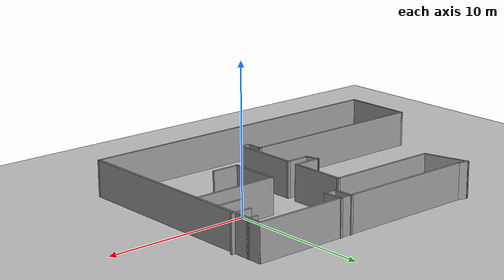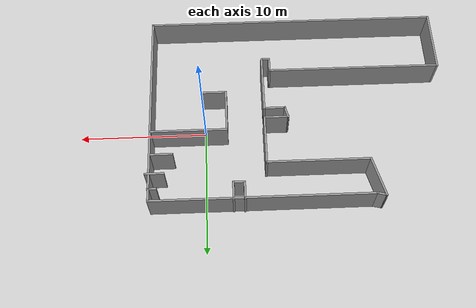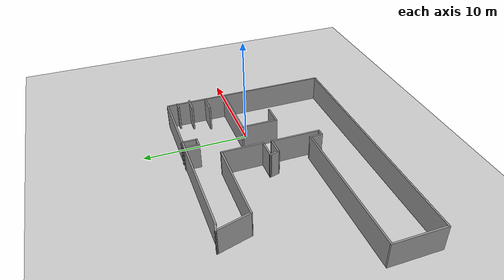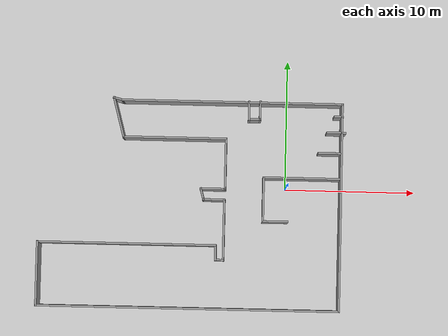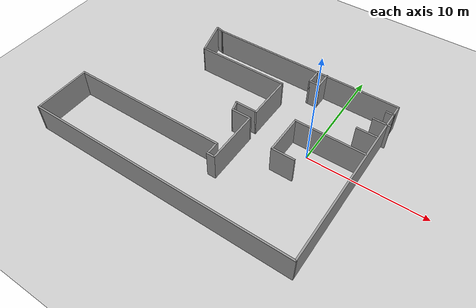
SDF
<sdf version="1.6">
 <world name="default">
  <light name="sun" type="directional">
   <pose>0 0 10 0 -0 0</pose>
   <diffuse>0.8 0.8 0.8 1</diffuse>
   <specular>0.2 0.2 0.2 1</specular>
   <attenuation>
    <range>1000</range>
    <constant>0.9</constant>
    <linear>0.01</linear>
    <quadratic>0.001</quadratic>
   </attenuation>
   <direction>-0.5 0.1 -0.9</direction>
  </light>
  <model name="ground_plane">
   <static>1</static>
   <link name="link">
    <collision name="collision">
     <geometry><plane><normal>0 0 1</normal><size>100 100</size></plane></geometry>
     <surface>
      <contact><collide_bitmask>65535</collide_bitmask></contact>
      <friction><ode><mu>100</mu><mu2>50</mu2></ode></friction>
     </surface>
    </collision>
    <visual name="visual">
     <cast_shadows>0</cast_shadows>
     <geometry><plane><normal>0 0 1</normal><size>100 100</size></plane></geometry>
     <material>
      <script><uri>file://media/materials/scripts/gazebo.material</uri><name>Gazebo/Grey</name></script>
     </material>
    </visual>
   </link>
  </model>
  <gravity>0 0 -9.8</gravity>
  <magnetic_field>6e-06 2.3e-05 -4.2e-05</magnetic_field>
  <atmosphere type="adiabatic"/>
  <physics name="default_physics" default="0" type="ode">
   <max_step_size>0.001</max_step_size>
   <real_time_factor>1</real_time_factor>
   <real_time_update_rate>1000</real_time_update_rate>
  </physics>
  <scene><ambient>0.4 0.4 0.4 1</ambient><background>0.7 0.7 0.7 1</background><shadows>1</shadows></scene>
  <spherical_coordinates>
   <surface_model>EARTH_WGS84</surface_model>
   <latitude_deg>0</latitude_deg>
   <longitude_deg>0</longitude_deg>
   <elevation>0</elevation>
   <heading_deg>0</heading_deg>
  </spherical_coordinates>
  <model name="pf_13">
   <pose>-7.20667 -1.27419 0 0 -0 0</pose>
   <link name="Wall_12">
    <collision name="Wall_12_Collision">
     <geometry><box><size>17 0.15 2.5</size></box></geometry>
     <pose>0 0 1.25 0 -0 0</pose>
    </collision>
    <visual name="Wall_12_Visual">
     <pose>0 0 1.25 0 -0 0</pose>
     <geometry><box><size>17 0.15 2.5</size></box></geometry>
     <material>
      <script><uri>file://media/materials/scripts/gazebo.material</uri><name>Gazebo/Grey</name></script>
      <ambient>1 1 1 1</ambient>
     </material>
     <meta><layer>0</layer></meta>
    </visual>
    <pose>2.99692 7.83387 0 0 -0 0</pose>
   </link>
   <link name="Wall_13">
    <collision name="Wall_13_Collision">
     <geometry><box><size>16 0.15 2.5</size></box></geometry>
     <pose>0 0 1.25 0 -0 0</pose>
    </collision>
    <visual name="Wall_13_Visual">
     <pose>0 0 1.25 0 -0 0</pose>
     <geometry><box><size>16 0.15 2.5</size></box></geometry>
     <material>
      <script><uri>file://media/materials/scripts/gazebo.material</uri><name>Gazebo/Grey</name></script>
      <ambient>1 1 1 1</ambient>
     </material>
     <meta><layer>0</layer></meta>
    </visual>
    <pose>11.4219 -0.091131 0 0 -0 -1.5708</pose>
   </link>
   <link name="Wall_15">
    <collision name="Wall_15_Collision">
     <geometry><box><size>23.25 0.15 2.5</size></box></geometry>
     <pose>0 0 1.25 0 -0 0</pose>
    </collision>
    <visual name="Wall_15_Visual">
     <pose>0 0 1.25 0 -0 0</pose>
     <geometry><box><size>23.25 0.15 2.5</size></box></geometry>
     <material>
      <script><uri>file://media/materials/scripts/gazebo.material</uri><name>Gazebo/Grey</name></script>
      <ambient>1 1 1 1</ambient>
     </material>
     <meta><layer>0</layer></meta>
    </visual>
    <pose>-0.12808 -8.01613 0 0 -0 3.14159</pose>
   </link>
   <link name="Wall_16">
    <collision name="Wall_16_Collision">
     <geometry><box><size>5 0.15 2.5</size></box></geometry>
     <pose>0 0 1.25 0 -0 0</pose>
    </collision>
    <visual name="Wall_16_Visual">
     <pose>0 0 1.25 0 -0 0</pose>
     <geometry><box><size>5 0.15 2.5</size></box></geometry>
     <material>
      <script><uri>file://media/materials/scripts/gazebo.material</uri><name>Gazebo/Grey</name></script>
      <ambient>1 1 1 1</ambient>
     </material>
     <meta><layer>0</layer></meta>
    </visual>
    <pose>-11.6781 -5.59113 0 0 -0 1.5708</pose>
   </link>
   <link name="Wall_17">
    <collision name="Wall_17_Collision">
     <geometry><box><size>13.75 0.15 2.5</size></box></geometry>
     <pose>0 0 1.25 0 -0 0</pose>
    </collision>
    <visual name="Wall_17_Visual">
     <pose>0 0 1.25 0 -0 0</pose>
     <geometry><box><size>13.75 0.15 2.5</size></box></geometry>
     <material>
      <script><uri>file://media/materials/scripts/gazebo.material</uri><name>Gazebo/Grey</name></script>
      <ambient>1 1 1 1</ambient>
     </material>
     <meta><layer>0</layer></meta>
    </visual>
    <pose>-4.87808 -3.16613 0 0 -0 0</pose>
   </link>
   <link name="Wall_18">
    <collision name="Wall_18_Collision">
     <geometry><box><size>1.25 0.15 2.5</size></box></geometry>
     <pose>0 0 1.25 0 -0 0</pose>
    </collision>
    <visual name="Wall_18_Visual">
     <pose>0 0 1.25 0 -0 0</pose>
     <geometry><box><size>1.25 0.15 2.5</size></box></geometry>
     <material>
      <script><uri>file://media/materials/scripts/gazebo.material</uri><name>Gazebo/Grey</name></script>
      <ambient>1 1 1 1</ambient>
     </material>
     <meta><layer>0</layer></meta>
    </visual>
    <pose>1.92192 -3.71613 0 0 -0 -1.5708</pose>
   </link>
   <link name="Wall_19">
    <collision name="Wall_19_Collision">
     <geometry><box><size>0.75 0.15 2.5</size></box></geometry>
     <pose>0 0 1.25 0 -0 0</pose>
    </collision>
    <visual name="Wall_19_Visual">
     <pose>0 0 1.25 0 -0 0</pose>
     <geometry><box><size>0.75 0.15 2.5</size></box></geometry>
     <material>
      <script><uri>file://media/materials/scripts/gazebo.material</uri><name>Gazebo/Grey</name></script>
      <ambient>1 1 1 1</ambient>
     </material>
     <meta><layer>0</layer></meta>
    </visual>
    <pose>2.22192 -4.26613 0 0 -0 0</pose>
   </link>
   <link name="Wall_20">
    <collision name="Wall_20_Collision">
     <geometry><box><size>4.75 0.15 2.5</size></box></geometry>
     <pose>0 0 1.25 0 -0 0</pose>
    </collision>
    <visual name="Wall_20_Visual">
     <pose>0 0 1.25 0 -0 0</pose>
     <geometry><box><size>4.75 0.15 2.5</size></box></geometry>
     <material>
      <script><uri>file://media/materials/scripts/gazebo.material</uri><name>Gazebo/Grey</name></script>
      <ambient>1 1 1 1</ambient>
     </material>
     <meta><layer>0</layer></meta>
    </visual>
    <pose>2.52192 -1.96613 0 0 -0 1.5708</pose>
   </link>
   <link name="Wall_21">
    <collision name="Wall_21_Collision">
     <geometry><box><size>1.75 0.15 2.5</size></box></geometry>
     <pose>0 0 1.25 0 -0 0</pose>
    </collision>
    <visual name="Wall_21_Visual">
     <pose>0 0 1.25 0 -0 0</pose>
     <geometry><box><size>1.75 0.15 2.5</size></box></geometry>
     <material>
      <script><uri>file://media/materials/scripts/gazebo.material</uri><name>Gazebo/Grey</name></script>
      <ambient>1 1 1 1</ambient>
     </material>
     <meta><layer>0</layer></meta>
    </visual>
    <pose>1.72192 0.333869 0 0 -0 3.14159</pose>
   </link>
   <link name="Wall_22">
    <collision name="Wall_22_Collision">
     <geometry><box><size>1 0.15 2.5</size></box></geometry>
     <pose>0 0 1.25 0 -0 0</pose>
    </collision>
    <visual name="Wall_22_Visual">
     <pose>0 0 1.25 0 -0 0</pose>
     <geometry><box><size>1 0.15 2.5</size></box></geometry>
     <material>
      <script><uri>file://media/materials/scripts/gazebo.material</uri><name>Gazebo/Grey</name></script>
      <ambient>1 1 1 1</ambient>
     </material>
     <meta><layer>0</layer></meta>
    </visual>
    <pose>0.811922 0.744387 0 0 -0 1.8326</pose>
   </link>
   <link name="Wall_23">
    <collision name="Wall_23_Collision">
     <geometry><box><size>2 0.15 2.5</size></box></geometry>
     <pose>0 0 1.25 0 -0 0</pose>
    </collision>
    <visual name="Wall_23_Visual">
     <pose>0 0 1.25 0 -0 0</pose>
     <geometry><box><size>2 0.15 2.5</size></box></geometry>
     <material>
      <script><uri>file://media/materials/scripts/gazebo.material</uri><name>Gazebo/Grey</name></script>
      <ambient>1 1 1 1</ambient>
     </material>
     <meta><layer>0</layer></meta>
    </visual>
    <pose>1.62692 1.15491 0 0 -0 0</pose>
   </link>
   <link name="Wall_24">
    <collision name="Wall_24_Collision">
     <geometry><box><size>4 0.15 2.5</size></box></geometry>
     <pose>0 0 1.25 0 -0 0</pose>
    </collision>
    <visual name="Wall_24_Visual">
     <pose>0 0 1.25 0 -0 0</pose>
     <geometry><box><size>4 0.15 2.5</size></box></geometry>
     <material>
      <script><uri>file://media/materials/scripts/gazebo.material</uri><name>Gazebo/Grey</name></script>
      <ambient>1 1 1 1</ambient>
     </material>
     <meta><layer>0</layer></meta>
    </visual>
    <pose>2.55192 3.07991 0 0 -0 1.5708</pose>
   </link>
   <link name="Wall_25">
    <collision name="Wall_25_Collision">
     <geometry><box><size>8 0.15 2.5</size></box></geometry>
     <pose>0 0 1.25 0 -0 0</pose>
    </collision>
    <visual name="Wall_25_Visual">
     <pose>0 0 1.25 0 -0 0</pose>
     <geometry><box><size>8 0.15 2.5</size></box></geometry>
     <material>
      <script><uri>file://media/materials/scripts/gazebo.material</uri><name>Gazebo/Grey</name></script>
      <ambient>1 1 1 1</ambient>
     </material>
     <meta><layer>0</layer></meta>
    </visual>
    <pose>-1.37308 5.00491 0 0 -0 3.14159</pose>
   </link>
   <link name="Wall_26">
    <collision name="Wall_26_Collision">
     <geometry><box><size>3.25 0.15 2.5</size></box></geometry>
     <pose>0 0 1.25 0 -0 0</pose>
    </collision>
    <visual name="Wall_26_Visual">
     <pose>0 0 1.25 0 -0 0</pose>
     <geometry><box><size>3.25 0.15 2.5</size></box></geometry>
     <material>
      <script><uri>file://media/materials/scripts/gazebo.material</uri><name>Gazebo/Grey</name></script>
      <ambient>1 1 1 1</ambient>
     </material>
     <meta><layer>0</layer></meta>
    </visual>
    <pose>-5.69925 6.50209 0 0 -0 1.8326</pose>
   </link>
   <link name="Wall_27">
    <collision name="Wall_27_Collision">
     <geometry><box><size>0.842383 0.15 2.5</size></box></geometry>
     <pose>0 0 1.25 0 -0 0</pose>
    </collision>
    <visual name="Wall_27_Visual">
     <pose>0 0 1.25 0 -0 0</pose>
     <geometry><box><size>0.842383 0.15 2.5</size></box></geometry>
     <material>
      <script><uri>file://media/materials/scripts/gazebo.material</uri><name>Gazebo/Grey</name></script>
      <ambient>1 1 1 1</ambient>
     </material>
     <meta><layer>0</layer></meta>
    </visual>
    <pose>-5.76425 7.91657 0 0 -0 -0.241228</pose>
   </link>
   <link name="Wall_29">
    <collision name="Wall_29_Collision">
     <geometry><box><size>6 0.15 2.5</size></box></geometry>
     <pose>0 0 1.25 0 -0 0</pose>
    </collision>
    <visual name="Wall_29_Visual">
     <pose>0 0 1.25 0 -0 0</pose>
     <geometry><box><size>6 0.15 2.5</size></box></geometry>
     <material>
      <script><uri>file://media/materials/scripts/gazebo.material</uri><name>Gazebo/Grey</name></script>
      <ambient>1 1 1 1</ambient>
     </material>
     <meta><layer>0</layer></meta>
    </visual>
    <pose>8.42719 2.09973 0 0 -0 3.14159</pose>
   </link>
   <link name="Wall_30">
    <collision name="Wall_30_Collision">
     <geometry><box><size>3.5 0.15 2.5</size></box></geometry>
     <pose>0 0 1.25 0 -0 0</pose>
    </collision>
    <visual name="Wall_30_Visual">
     <pose>0 0 1.25 0 -0 0</pose>
     <geometry><box><size>3.5 0.15 2.5</size></box></geometry>
     <material>
      <script><uri>file://media/materials/scripts/gazebo.material</uri><name>Gazebo/Grey</name></script>
      <ambient>1 1 1 1</ambient>
     </material>
     <meta><layer>0</layer></meta>
    </visual>
    <pose>5.50219 0.424731 0 0 -0 -1.5708</pose>
   </link>
   <link name="Wall_31">
    <collision name="Wall_31_Collision">
     <geometry><box><size>2 0.15 2.5</size></box></geometry>
     <pose>0 0 1.25 0 -0 0</pose>
    </collision>
    <visual name="Wall_31_Visual">
     <pose>0 0 1.25 0 -0 0</pose>
     <geometry><box><size>2 0.15 2.5</size></box></geometry>
     <material>
      <script><uri>file://media/materials/scripts/gazebo.material</uri><name>Gazebo/Grey</name></script>
      <ambient>1 1 1 1</ambient>
     </material>
     <meta><layer>0</layer></meta>
    </visual>
    <pose>6.42719 -1.25027 0 0 -0 0</pose>
   </link>
   <link name="Wall_33">
    <collision name="Wall_33_Collision">
     <geometry><box><size>0.16 0.15 2.5</size></box></geometry>
     <pose>0 0 1.25 0 -0 0</pose>
    </collision>
    <visual name="Wall_33_Visual">
     <pose>0 0 1.25 0 -0 0</pose>
     <geometry><box><size>0.16 0.15 2.5</size></box></geometry>
     <material>
      <script><uri>file://media/materials/scripts/gazebo.material</uri><name>Gazebo/Grey</name></script>
      <ambient>1 1 1 1</ambient>
     </material>
     <meta><layer>0</layer></meta>
    </visual>
    <pose>11.4588 6.88553 0 0 -0 0</pose>
   </link>
   <link name="Wall_34">
    <collision name="Wall_34_Collision">
     <geometry><box><size>0.75 0.15 2.5</size></box></geometry>
     <pose>0 0 1.25 0 -0 0</pose>
    </collision>
    <visual name="Wall_34_Visual">
     <pose>0 0 1.25 0 -0 0</pose>
     <geometry><box><size>0.75 0.15 2.5</size></box></geometry>
     <material>
      <script><uri>file://media/materials/scripts/gazebo.material</uri><name>Gazebo/Grey</name></script>
      <ambient>1 1 1 1</ambient>
     </material>
     <meta><layer>0</layer></meta>
    </visual>
    <pose>11.1638 6.88553 0 0 -0 3.14159</pose>
   </link>
   <link name="Wall_36">
    <collision name="Wall_36_Collision">
     <geometry><box><size>1.5 0.15 2.5</size></box></geometry>
     <pose>0 0 1.25 0 -0 0</pose>
    </collision>
    <visual name="Wall_36_Visual">
     <pose>0 0 1.25 0 -0 0</pose>
     <geometry><box><size>1.5 0.15 2.5</size></box></geometry>
     <material>
      <script><uri>file://media/materials/scripts/gazebo.material</uri><name>Gazebo/Grey</name></script>
      <ambient>1 1 1 1</ambient>
     </material>
     <meta><layer>0</layer></meta>
    </visual>
    <pose>11.0031 5.65427 0 0 -0 0</pose>
   </link>
   <link name="Wall_38">
    <collision name="Wall_38_Collision">
     <geometry><box><size>1.75 0.15 2.5</size></box></geometry>
     <pose>0 0 1.25 0 -0 0</pose>
    </collision>
    <visual name="Wall_38_Visual">
     <pose>0 0 1.25 0 -0 0</pose>
     <geometry><box><size>1.75 0.15 2.5</size></box></geometry>
     <material>
      <script><uri>file://media/materials/scripts/gazebo.material</uri><name>Gazebo/Grey</name></script>
      <ambient>1 1 1 1</ambient>
     </material>
     <meta><layer>0</layer></meta>
    </visual>
    <pose>10.4949 4.07123 0 0 -0 0</pose>
   </link>
   <link name="Wall_40">
    <collision name="Wall_40_Collision">
     <geometry><box><size>1.5 0.15 2.5</size></box></geometry>
     <pose>0 0 1.25 0 -0 0</pose>
    </collision>
    <visual name="Wall_40_Visual">
     <pose>0 0 1.25 0 -0 0</pose>
     <geometry><box><size>1.5 0.15 2.5</size></box></geometry>
     <material>
      <script><uri>file://media/materials/scripts/gazebo.material</uri><name>Gazebo/Grey</name></script>
      <ambient>1 1 1 1</ambient>
     </material>
     <meta><layer>0</layer></meta>
    </visual>
    <pose>4.27733 7.23071 0 0 -0 -1.5708</pose>
   </link>
   <link name="Wall_41">
    <collision name="Wall_41_Collision">
     <geometry><box><size>1 0.15 2.5</size></box></geometry>
     <pose>0 0 1.25 0 -0 0</pose>
    </collision>
    <visual name="Wall_41_Visual">
     <pose>0 0 1.25 0 -0 0</pose>
     <geometry><box><size>1 0.15 2.5</size></box></geometry>
     <material>
      <script><uri>file://media/materials/scripts/gazebo.material</uri><name>Gazebo/Grey</name></script>
      <ambient>1 1 1 1</ambient>
     </material>
     <meta><layer>0</layer></meta>
    </visual>
    <pose>4.70233 6.55571 0 0 -0 0</pose>
   </link>
   <link name="Wall_42">
    <collision name="Wall_42_Collision">
     <geometry><box><size>1.5 0.15 2.5</size></box></geometry>
     <pose>0 0 1.25 0 -0 0</pose>
    </collision>
    <visual name="Wall_42_Visual">
     <pose>0 0 1.25 0 -0 0</pose>
     <geometry><box><size>1.5 0.15 2.5</size></box></geometry>
     <material>
      <script><uri>file://media/materials/scripts/gazebo.material</uri><name>Gazebo/Grey</name></script>
      <ambient>1 1 1 1</ambient>
     </material>
     <meta><layer>0</layer></meta>
    </visual>
    <pose>5.12733 7.23071 0 0 -0 1.5708</pose>
   </link>
   <static>1</static>
  </model>
 </world>
</sdf>
